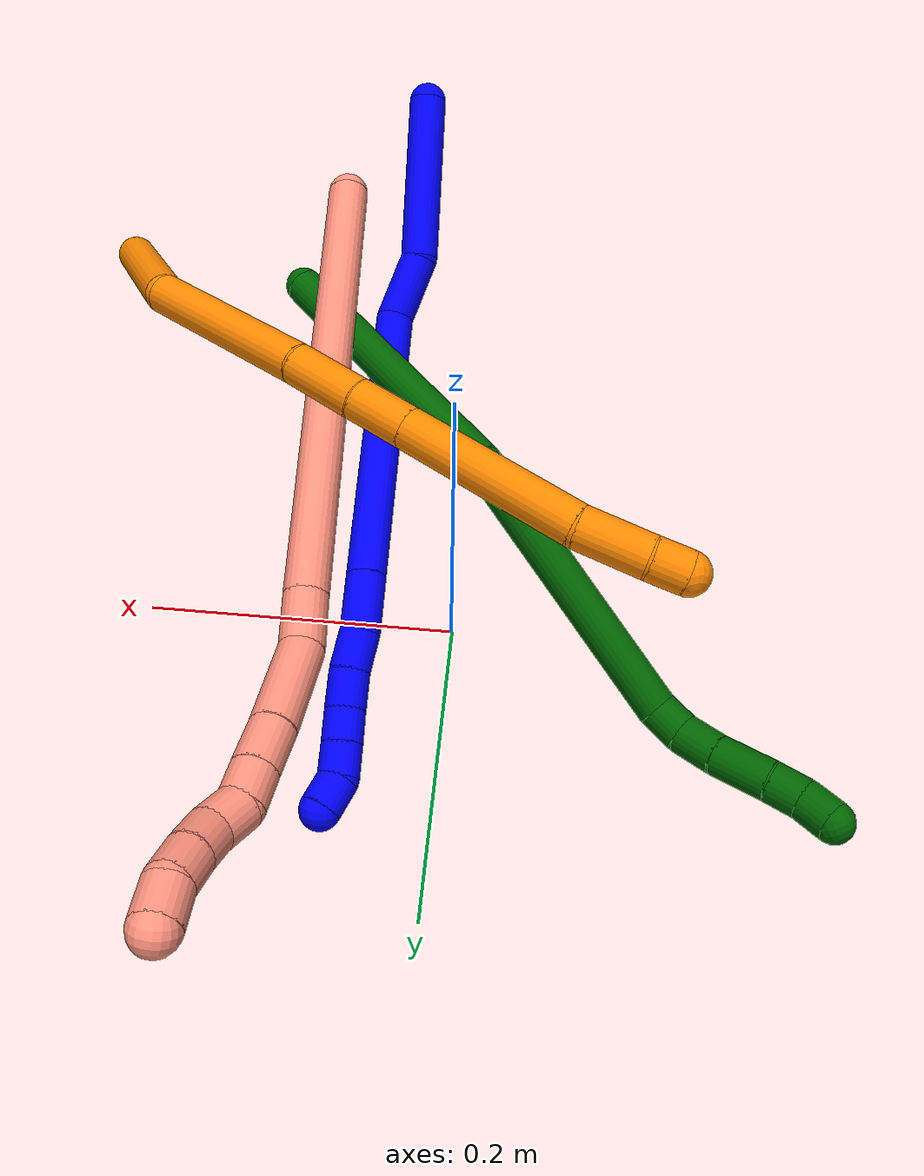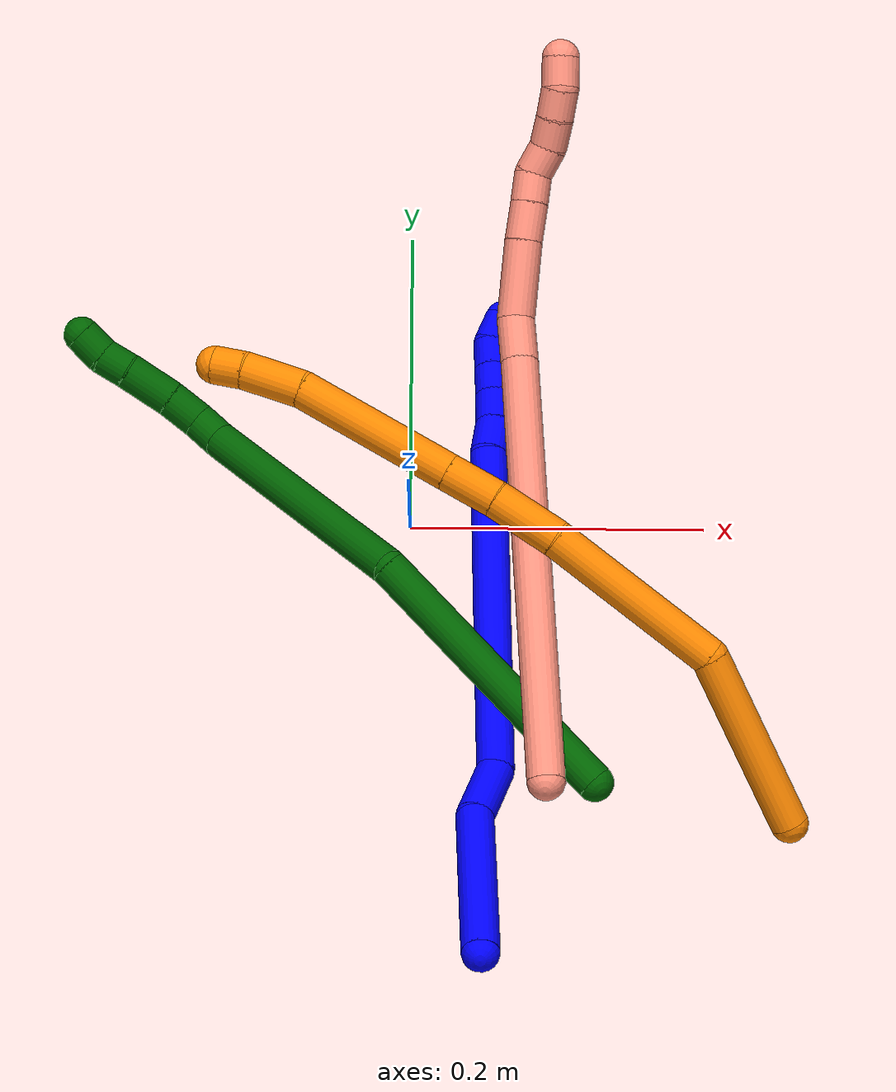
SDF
<sdf version="1.7">
 <world name="default">
  <model name="1">
   <static>0</static>
   <link name="1">
    <collision name="collision-cylinder-e_1_1_4">
     <pose>0.000733 0.022248 -0.053082 -2.74471 0.012741 -0.063341</pose>
     <geometry><cylinder><radius>0.0125</radius><length>0.115122</length></cylinder></geometry>
     <surface>
      <friction><ode><mu>1.16</mu><mu2>1.16</mu2><slip1>0</slip1><slip2>0</slip2></ode></friction>
      <contact><ode><kp>1e+06</kp><kd>1</kd><max_vel>0</max_vel><min_depth>0.001</min_depth></ode></contact>
     </surface>
    </collision>
    <visual name="visual-cylinder-e_1_1_4">
     <pose>0.000733 0.022248 -0.053082 -2.74471 0.012741 -0.063341</pose>
     <geometry><cylinder><radius>0.0125</radius><length>0.115122</length></cylinder></geometry>
     <material><ambient>0 0 1 1</ambient></material>
    </visual>
    <collision name="collision-cylinder-e_2_4_5">
     <pose>0.008862 0.050618 -0.126585 -2.85034 0.333932 -1.70936</pose>
     <geometry><cylinder><radius>0.0125</radius><length>0.045128</length></cylinder></geometry>
     <surface>
      <friction><ode><mu>1.16</mu><mu2>1.16</mu2><slip1>0</slip1><slip2>0</slip2></ode></friction>
      <contact><ode><kp>1e+06</kp><kd>1</kd><max_vel>0</max_vel><min_depth>0.001</min_depth></ode></contact>
     </surface>
    </collision>
    <visual name="visual-cylinder-e_2_4_5">
     <pose>0.008862 0.050618 -0.126585 -2.85034 0.333932 -1.70936</pose>
     <geometry><cylinder><radius>0.0125</radius><length>0.045128</length></cylinder></geometry>
     <material><ambient>0 0 1 1</ambient></material>
    </visual>
    <collision name="collision-cylinder-e_3_5_6">
     <pose>0.023188 0.122661 -0.218068 -2.39371 0.071377 -0.181475</pose>
     <geometry><cylinder><radius>0.0125</radius><length>0.194357</length></cylinder></geometry>
     <surface>
      <friction><ode><mu>1.16</mu><mu2>1.16</mu2><slip1>0</slip1><slip2>0</slip2></ode></friction>
      <contact><ode><kp>1e+06</kp><kd>1</kd><max_vel>0</max_vel><min_depth>0.001</min_depth></ode></contact>
     </surface>
    </collision>
    <visual name="visual-cylinder-e_3_5_6">
     <pose>0.023188 0.122661 -0.218068 -2.39371 0.071377 -0.181475</pose>
     <geometry><cylinder><radius>0.0125</radius><length>0.194357</length></cylinder></geometry>
     <material><ambient>0 0 1 1</ambient></material>
    </visual>
    <collision name="collision-cylinder-e_4_6_7">
     <pose>0.031397 0.200889 -0.302344 -2.39167 0.070679 -0.179171</pose>
     <geometry><cylinder><radius>0.0125</radius><length>0.036203</length></cylinder></geometry>
     <surface>
      <friction><ode><mu>1.16</mu><mu2>1.16</mu2><slip1>0</slip1><slip2>0</slip2></ode></friction>
      <contact><ode><kp>1e+06</kp><kd>1</kd><max_vel>0</max_vel><min_depth>0.001</min_depth></ode></contact>
     </surface>
    </collision>
    <visual name="visual-cylinder-e_4_6_7">
     <pose>0.031397 0.200889 -0.302344 -2.39167 0.070679 -0.179171</pose>
     <geometry><cylinder><radius>0.0125</radius><length>0.036203</length></cylinder></geometry>
     <material><ambient>0 0 1 1</ambient></material>
    </visual>
    <collision name="collision-cylinder-e_5_7_8">
     <pose>0.035304 0.219611 -0.32567 -2.57632 0.216023 -0.714698</pose>
     <geometry><cylinder><radius>0.0125</radius><length>0.024522</length></cylinder></geometry>
     <surface>
      <friction><ode><mu>1.16</mu><mu2>1.16</mu2><slip1>0</slip1><slip2>0</slip2></ode></friction>
      <contact><ode><kp>1e+06</kp><kd>1</kd><max_vel>0</max_vel><min_depth>0.001</min_depth></ode></contact>
     </surface>
    </collision>
    <visual name="visual-cylinder-e_5_7_8">
     <pose>0.035304 0.219611 -0.32567 -2.57632 0.216023 -0.714698</pose>
     <geometry><cylinder><radius>0.0125</radius><length>0.024522</length></cylinder></geometry>
     <material><ambient>0 0 1 1</ambient></material>
    </visual>
    <collision name="collision-cylinder-e_6_8_9">
     <pose>0.038777 0.232731 -0.345546 -2.5398 0.071239 -0.228666</pose>
     <geometry><cylinder><radius>0.0125</radius><length>0.023748</length></cylinder></geometry>
     <surface>
      <friction><ode><mu>1.16</mu><mu2>1.16</mu2><slip1>0</slip1><slip2>0</slip2></ode></friction>
      <contact><ode><kp>1e+06</kp><kd>1</kd><max_vel>0</max_vel><min_depth>0.001</min_depth></ode></contact>
     </surface>
    </collision>
    <visual name="visual-cylinder-e_6_8_9">
     <pose>0.038777 0.232731 -0.345546 -2.5398 0.071239 -0.228666</pose>
     <geometry><cylinder><radius>0.0125</radius><length>0.023748</length></cylinder></geometry>
     <material><ambient>0 0 1 1</ambient></material>
    </visual>
    <collision name="collision-cylinder-e_7_9_10">
     <pose>0.040196 0.246383 -0.362951 -2.40381 0.055487 -0.143319</pose>
     <geometry><cylinder><radius>0.0125</radius><length>0.020688</length></cylinder></geometry>
     <surface>
      <friction><ode><mu>1.16</mu><mu2>1.16</mu2><slip1>0</slip1><slip2>0</slip2></ode></friction>
      <contact><ode><kp>1e+06</kp><kd>1</kd><max_vel>0</max_vel><min_depth>0.001</min_depth></ode></contact>
     </surface>
    </collision>
    <visual name="visual-cylinder-e_7_9_10">
     <pose>0.040196 0.246383 -0.362951 -2.40381 0.055487 -0.143319</pose>
     <geometry><cylinder><radius>0.0125</radius><length>0.020688</length></cylinder></geometry>
     <material><ambient>0 0 1 1</ambient></material>
    </visual>
    <collision name="collision-cylinder-e_8_10_11">
     <pose>0.041402 0.260126 -0.378047 -2.40233 0.06267 -0.161456</pose>
     <geometry><cylinder><radius>0.0125</radius><length>0.020214</length></cylinder></geometry>
     <surface>
      <friction><ode><mu>1.16</mu><mu2>1.16</mu2><slip1>0</slip1><slip2>0</slip2></ode></friction>
      <contact><ode><kp>1e+06</kp><kd>1</kd><max_vel>0</max_vel><min_depth>0.001</min_depth></ode></contact>
     </surface>
    </collision>
    <visual name="visual-cylinder-e_8_10_11">
     <pose>0.041402 0.260126 -0.378047 -2.40233 0.06267 -0.161456</pose>
     <geometry><cylinder><radius>0.0125</radius><length>0.020214</length></cylinder></geometry>
     <material><ambient>0 0 1 1</ambient></material>
    </visual>
    <collision name="collision-cylinder-e_9_11_2">
     <pose>0.046845 0.273145 -0.391692 -2.35351 0.501247 -1.10379</pose>
     <geometry><cylinder><radius>0.0125</radius><length>0.020019</length></cylinder></geometry>
     <surface>
      <friction><ode><mu>1.16</mu><mu2>1.16</mu2><slip1>0</slip1><slip2>0</slip2></ode></friction>
      <contact><ode><kp>1e+06</kp><kd>1</kd><max_vel>0</max_vel><min_depth>0.001</min_depth></ode></contact>
     </surface>
    </collision>
    <visual name="visual-cylinder-e_9_11_2">
     <pose>0.046845 0.273145 -0.391692 -2.35351 0.501247 -1.10379</pose>
     <geometry><cylinder><radius>0.0125</radius><length>0.020019</length></cylinder></geometry>
     <material><ambient>0 0 1 1</ambient></material>
    </visual>
    <collision name="collision-sphere-2">
     <pose>0.051655 0.279369 -0.397882 0 -0 0</pose>
     <geometry><sphere><radius>0.0125</radius></sphere></geometry>
     <surface>
      <friction><ode><mu>1.16</mu><mu2>1.16</mu2><slip1>0</slip1><slip2>0</slip2></ode></friction>
      <contact><ode><kp>1e+06</kp><kd>1</kd><max_vel>0</max_vel><min_depth>0.001</min_depth></ode></contact>
     </surface>
    </collision>
    <visual name="visual-sphere-2">
     <pose>0.051655 0.279369 -0.397882 0 -0 0</pose>
     <geometry><sphere><radius>0.0125</radius></sphere></geometry>
     <material><ambient>0 0 1 1</ambient></material>
    </visual>
    <collision name="collision-sphere-11">
     <pose>0.042035 0.266922 -0.385501 0 -0 0</pose>
     <geometry><sphere><radius>0.0125</radius></sphere></geometry>
     <surface>
      <friction><ode><mu>1.16</mu><mu2>1.16</mu2><slip1>0</slip1><slip2>0</slip2></ode></friction>
      <contact><ode><kp>1e+06</kp><kd>1</kd><max_vel>0</max_vel><min_depth>0.001</min_depth></ode></contact>
     </surface>
    </collision>
    <visual name="visual-sphere-11">
     <pose>0.042035 0.266922 -0.385501 0 -0 0</pose>
     <geometry><sphere><radius>0.0125</radius></sphere></geometry>
     <material><ambient>0 0 1 1</ambient></material>
    </visual>
    <collision name="collision-sphere-10">
     <pose>0.040769 0.25333 -0.370593 0 -0 0</pose>
     <geometry><sphere><radius>0.0125</radius></sphere></geometry>
     <surface>
      <friction><ode><mu>1.16</mu><mu2>1.16</mu2><slip1>0</slip1><slip2>0</slip2></ode></friction>
      <contact><ode><kp>1e+06</kp><kd>1</kd><max_vel>0</max_vel><min_depth>0.001</min_depth></ode></contact>
     </surface>
    </collision>
    <visual name="visual-sphere-10">
     <pose>0.040769 0.25333 -0.370593 0 -0 0</pose>
     <geometry><sphere><radius>0.0125</radius></sphere></geometry>
     <material><ambient>0 0 1 1</ambient></material>
    </visual>
    <collision name="collision-sphere-9">
     <pose>0.039622 0.239436 -0.355309 0 -0 0</pose>
     <geometry><sphere><radius>0.0125</radius></sphere></geometry>
     <surface>
      <friction><ode><mu>1.16</mu><mu2>1.16</mu2><slip1>0</slip1><slip2>0</slip2></ode></friction>
      <contact><ode><kp>1e+06</kp><kd>1</kd><max_vel>0</max_vel><min_depth>0.001</min_depth></ode></contact>
     </surface>
    </collision>
    <visual name="visual-sphere-9">
     <pose>0.039622 0.239436 -0.355309 0 -0 0</pose>
     <geometry><sphere><radius>0.0125</radius></sphere></geometry>
     <material><ambient>0 0 1 1</ambient></material>
    </visual>
    <collision name="collision-sphere-4">
     <pose>0.001467 0.044497 -0.106165 0 -0 0</pose>
     <geometry><sphere><radius>0.0125</radius></sphere></geometry>
     <surface>
      <friction><ode><mu>1.16</mu><mu2>1.16</mu2><slip1>0</slip1><slip2>0</slip2></ode></friction>
      <contact><ode><kp>1e+06</kp><kd>1</kd><max_vel>0</max_vel><min_depth>0.001</min_depth></ode></contact>
     </surface>
    </collision>
    <visual name="visual-sphere-4">
     <pose>0.001467 0.044497 -0.106165 0 -0 0</pose>
     <geometry><sphere><radius>0.0125</radius></sphere></geometry>
     <material><ambient>0 0 1 1</ambient></material>
    </visual>
    <collision name="collision-sphere-1">
     <geometry><sphere><radius>0.0125</radius></sphere></geometry>
     <surface>
      <friction><ode><mu>1.16</mu><mu2>1.16</mu2><slip1>0</slip1><slip2>0</slip2></ode></friction>
      <contact><ode><kp>1e+06</kp><kd>1</kd><max_vel>0</max_vel><min_depth>0.001</min_depth></ode></contact>
     </surface>
    </collision>
    <visual name="visual-sphere-1">
     <geometry><sphere><radius>0.0125</radius></sphere></geometry>
     <material><ambient>0 0 1 1</ambient></material>
    </visual>
    <collision name="collision-sphere-8">
     <pose>0.037932 0.226026 -0.335783 0 -0 0</pose>
     <geometry><sphere><radius>0.0125</radius></sphere></geometry>
     <surface>
      <friction><ode><mu>1.16</mu><mu2>1.16</mu2><slip1>0</slip1><slip2>0</slip2></ode></friction>
      <contact><ode><kp>1e+06</kp><kd>1</kd><max_vel>0</max_vel><min_depth>0.001</min_depth></ode></contact>
     </surface>
    </collision>
    <visual name="visual-sphere-8">
     <pose>0.037932 0.226026 -0.335783 0 -0 0</pose>
     <geometry><sphere><radius>0.0125</radius></sphere></geometry>
     <material><ambient>0 0 1 1</ambient></material>
    </visual>
    <collision name="collision-sphere-5">
     <pose>0.016258 0.056739 -0.147005 0 -0 0</pose>
     <geometry><sphere><radius>0.0125</radius></sphere></geometry>
     <surface>
      <friction><ode><mu>1.16</mu><mu2>1.16</mu2><slip1>0</slip1><slip2>0</slip2></ode></friction>
      <contact><ode><kp>1e+06</kp><kd>1</kd><max_vel>0</max_vel><min_depth>0.001</min_depth></ode></contact>
     </surface>
    </collision>
    <visual name="visual-sphere-5">
     <pose>0.016258 0.056739 -0.147005 0 -0 0</pose>
     <geometry><sphere><radius>0.0125</radius></sphere></geometry>
     <material><ambient>0 0 1 1</ambient></material>
    </visual>
    <collision name="collision-sphere-6">
     <pose>0.030119 0.188582 -0.289132 0 -0 0</pose>
     <geometry><sphere><radius>0.0125</radius></sphere></geometry>
     <surface>
      <friction><ode><mu>1.16</mu><mu2>1.16</mu2><slip1>0</slip1><slip2>0</slip2></ode></friction>
      <contact><ode><kp>1e+06</kp><kd>1</kd><max_vel>0</max_vel><min_depth>0.001</min_depth></ode></contact>
     </surface>
    </collision>
    <visual name="visual-sphere-6">
     <pose>0.030119 0.188582 -0.289132 0 -0 0</pose>
     <geometry><sphere><radius>0.0125</radius></sphere></geometry>
     <material><ambient>0 0 1 1</ambient></material>
    </visual>
    <collision name="collision-sphere-7">
     <pose>0.032675 0.213196 -0.315557 0 -0 0</pose>
     <geometry><sphere><radius>0.0125</radius></sphere></geometry>
     <surface>
      <friction><ode><mu>1.16</mu><mu2>1.16</mu2><slip1>0</slip1><slip2>0</slip2></ode></friction>
      <contact><ode><kp>1e+06</kp><kd>1</kd><max_vel>0</max_vel><min_depth>0.001</min_depth></ode></contact>
     </surface>
    </collision>
    <visual name="visual-sphere-7">
     <pose>0.032675 0.213196 -0.315557 0 -0 0</pose>
     <geometry><sphere><radius>0.0125</radius></sphere></geometry>
     <material><ambient>0 0 1 1</ambient></material>
    </visual>
    <inertial>
     <pose>0.021041 0.125387 -0.208672 0 -0 0</pose>
     <mass>0.5</mass>
     <inertia>
      <ixx>0.000621</ixx>
      <ixy>0</ixy>
      <ixz>0</ixz>
      <iyy>-0.00068</iyy>
      <iyz>0</iyz>
      <izz>-0.000564</izz>
     </inertia>
    </inertial>
   </link>
   <pose>0.046915 -0.300897 0.215191 0.513061 -0.094899 0.125913</pose>
  </model>
  <model name="6">
   <static>0</static>
   <link name="6">
    <collision name="collision-cylinder-e_1_1_4">
     <pose>-0.028671 0.049148 -0.080304 -2.59238 -0.295598 0.972333</pose>
     <geometry><cylinder><radius>0.0125</radius><length>0.196839</length></cylinder></geometry>
     <surface>
      <friction><ode><mu>1.16</mu><mu2>1.16</mu2><slip1>0</slip1><slip2>0</slip2></ode></friction>
      <contact><ode><kp>1e+06</kp><kd>1</kd><max_vel>0</max_vel><min_depth>0.001</min_depth></ode></contact>
     </surface>
    </collision>
    <visual name="visual-cylinder-e_1_1_4">
     <pose>-0.028671 0.049148 -0.080304 -2.59238 -0.295598 0.972333</pose>
     <geometry><cylinder><radius>0.0125</radius><length>0.196839</length></cylinder></geometry>
     <material><ambient>0 0.392157 0.003922 1</ambient></material>
    </visual>
    <collision name="collision-cylinder-e_2_4_5">
     <pose>-0.078399 0.103104 -0.24965 -3.08766 -0.231897 2.68643</pose>
     <geometry><cylinder><radius>0.0125</radius><length>0.183247</length></cylinder></geometry>
     <surface>
      <friction><ode><mu>1.16</mu><mu2>1.16</mu2><slip1>0</slip1><slip2>0</slip2></ode></friction>
      <contact><ode><kp>1e+06</kp><kd>1</kd><max_vel>0</max_vel><min_depth>0.001</min_depth></ode></contact>
     </surface>
    </collision>
    <visual name="visual-cylinder-e_2_4_5">
     <pose>-0.078399 0.103104 -0.24965 -3.08766 -0.231897 2.68643</pose>
     <geometry><cylinder><radius>0.0125</radius><length>0.183247</length></cylinder></geometry>
     <material><ambient>0 0.392157 0.003922 1</ambient></material>
    </visual>
    <collision name="collision-cylinder-e_3_5_6">
     <pose>-0.103047 0.112392 -0.347445 -2.66845 -0.350095 1.26582</pose>
     <geometry><cylinder><radius>0.0125</radius><length>0.020938</length></cylinder></geometry>
     <surface>
      <friction><ode><mu>1.16</mu><mu2>1.16</mu2><slip1>0</slip1><slip2>0</slip2></ode></friction>
      <contact><ode><kp>1e+06</kp><kd>1</kd><max_vel>0</max_vel><min_depth>0.001</min_depth></ode></contact>
     </surface>
    </collision>
    <visual name="visual-cylinder-e_3_5_6">
     <pose>-0.103047 0.112392 -0.347445 -2.66845 -0.350095 1.26582</pose>
     <geometry><cylinder><radius>0.0125</radius><length>0.020938</length></cylinder></geometry>
     <material><ambient>0 0.392157 0.003922 1</ambient></material>
    </visual>
    <collision name="collision-cylinder-e_4_6_7">
     <pose>-0.112453 0.124017 -0.364209 -2.41331 -0.496574 1.17392</pose>
     <geometry><cylinder><radius>0.0125</radius><length>0.024413</length></cylinder></geometry>
     <surface>
      <friction><ode><mu>1.16</mu><mu2>1.16</mu2><slip1>0</slip1><slip2>0</slip2></ode></friction>
      <contact><ode><kp>1e+06</kp><kd>1</kd><max_vel>0</max_vel><min_depth>0.001</min_depth></ode></contact>
     </surface>
    </collision>
    <visual name="visual-cylinder-e_4_6_7">
     <pose>-0.112453 0.124017 -0.364209 -2.41331 -0.496574 1.17392</pose>
     <geometry><cylinder><radius>0.0125</radius><length>0.024413</length></cylinder></geometry>
     <material><ambient>0 0.392157 0.003922 1</ambient></material>
    </visual>
    <collision name="collision-cylinder-e_5_7_8">
     <pose>-0.127846 0.140865 -0.382559 -2.38789 -0.593976 1.31647</pose>
     <geometry><cylinder><radius>0.0125</radius><length>0.034225</length></cylinder></geometry>
     <surface>
      <friction><ode><mu>1.16</mu><mu2>1.16</mu2><slip1>0</slip1><slip2>0</slip2></ode></friction>
      <contact><ode><kp>1e+06</kp><kd>1</kd><max_vel>0</max_vel><min_depth>0.001</min_depth></ode></contact>
     </surface>
    </collision>
    <visual name="visual-cylinder-e_5_7_8">
     <pose>-0.127846 0.140865 -0.382559 -2.38789 -0.593976 1.31647</pose>
     <geometry><cylinder><radius>0.0125</radius><length>0.034225</length></cylinder></geometry>
     <material><ambient>0 0.392157 0.003922 1</ambient></material>
    </visual>
    <collision name="collision-cylinder-e_6_8_9">
     <pose>-0.1431 0.155344 -0.399633 -2.5249 -0.60249 1.54599</pose>
     <geometry><cylinder><radius>0.0125</radius><length>0.020036</length></cylinder></geometry>
     <surface>
      <friction><ode><mu>1.16</mu><mu2>1.16</mu2><slip1>0</slip1><slip2>0</slip2></ode></friction>
      <contact><ode><kp>1e+06</kp><kd>1</kd><max_vel>0</max_vel><min_depth>0.001</min_depth></ode></contact>
     </surface>
    </collision>
    <visual name="visual-cylinder-e_6_8_9">
     <pose>-0.1431 0.155344 -0.399633 -2.5249 -0.60249 1.54599</pose>
     <geometry><cylinder><radius>0.0125</radius><length>0.020036</length></cylinder></geometry>
     <material><ambient>0 0.392157 0.003922 1</ambient></material>
    </visual>
    <collision name="collision-cylinder-e_7_9_2">
     <pose>-0.152488 0.166554 -0.413283 -2.3921 -0.37429 0.897359</pose>
     <geometry><cylinder><radius>0.0125</radius><length>0.020302</length></cylinder></geometry>
     <surface>
      <friction><ode><mu>1.16</mu><mu2>1.16</mu2><slip1>0</slip1><slip2>0</slip2></ode></friction>
      <contact><ode><kp>1e+06</kp><kd>1</kd><max_vel>0</max_vel><min_depth>0.001</min_depth></ode></contact>
     </surface>
    </collision>
    <visual name="visual-cylinder-e_7_9_2">
     <pose>-0.152488 0.166554 -0.413283 -2.3921 -0.37429 0.897359</pose>
     <geometry><cylinder><radius>0.0125</radius><length>0.020302</length></cylinder></geometry>
     <material><ambient>0 0.392157 0.003922 1</ambient></material>
    </visual>
    <collision name="collision-sphere-2">
     <pose>-0.1562 0.172991 -0.420199 0 -0 0</pose>
     <geometry><sphere><radius>0.0125</radius></sphere></geometry>
     <surface>
      <friction><ode><mu>1.16</mu><mu2>1.16</mu2><slip1>0</slip1><slip2>0</slip2></ode></friction>
      <contact><ode><kp>1e+06</kp><kd>1</kd><max_vel>0</max_vel><min_depth>0.001</min_depth></ode></contact>
     </surface>
    </collision>
    <visual name="visual-sphere-2">
     <pose>-0.1562 0.172991 -0.420199 0 -0 0</pose>
     <geometry><sphere><radius>0.0125</radius></sphere></geometry>
     <material><ambient>0 0.392157 0.003922 1</ambient></material>
    </visual>
    <collision name="collision-sphere-9">
     <pose>-0.148777 0.160118 -0.406366 0 -0 0</pose>
     <geometry><sphere><radius>0.0125</radius></sphere></geometry>
     <surface>
      <friction><ode><mu>1.16</mu><mu2>1.16</mu2><slip1>0</slip1><slip2>0</slip2></ode></friction>
      <contact><ode><kp>1e+06</kp><kd>1</kd><max_vel>0</max_vel><min_depth>0.001</min_depth></ode></contact>
     </surface>
    </collision>
    <visual name="visual-sphere-9">
     <pose>-0.148777 0.160118 -0.406366 0 -0 0</pose>
     <geometry><sphere><radius>0.0125</radius></sphere></geometry>
     <material><ambient>0 0.392157 0.003922 1</ambient></material>
    </visual>
    <collision name="collision-sphere-4">
     <pose>-0.057342 0.098297 -0.160609 0 -0 0</pose>
     <geometry><sphere><radius>0.0125</radius></sphere></geometry>
     <surface>
      <friction><ode><mu>1.16</mu><mu2>1.16</mu2><slip1>0</slip1><slip2>0</slip2></ode></friction>
      <contact><ode><kp>1e+06</kp><kd>1</kd><max_vel>0</max_vel><min_depth>0.001</min_depth></ode></contact>
     </surface>
    </collision>
    <visual name="visual-sphere-4">
     <pose>-0.057342 0.098297 -0.160609 0 -0 0</pose>
     <geometry><sphere><radius>0.0125</radius></sphere></geometry>
     <material><ambient>0 0.392157 0.003922 1</ambient></material>
    </visual>
    <collision name="collision-sphere-1">
     <geometry><sphere><radius>0.0125</radius></sphere></geometry>
     <surface>
      <friction><ode><mu>1.16</mu><mu2>1.16</mu2><slip1>0</slip1><slip2>0</slip2></ode></friction>
      <contact><ode><kp>1e+06</kp><kd>1</kd><max_vel>0</max_vel><min_depth>0.001</min_depth></ode></contact>
     </surface>
    </collision>
    <visual name="visual-sphere-1">
     <geometry><sphere><radius>0.0125</radius></sphere></geometry>
     <material><ambient>0 0.392157 0.003922 1</ambient></material>
    </visual>
    <collision name="collision-sphere-8">
     <pose>-0.137423 0.15057 -0.392899 0 -0 0</pose>
     <geometry><sphere><radius>0.0125</radius></sphere></geometry>
     <surface>
      <friction><ode><mu>1.16</mu><mu2>1.16</mu2><slip1>0</slip1><slip2>0</slip2></ode></friction>
      <contact><ode><kp>1e+06</kp><kd>1</kd><max_vel>0</max_vel><min_depth>0.001</min_depth></ode></contact>
     </surface>
    </collision>
    <visual name="visual-sphere-8">
     <pose>-0.137423 0.15057 -0.392899 0 -0 0</pose>
     <geometry><sphere><radius>0.0125</radius></sphere></geometry>
     <material><ambient>0 0.392157 0.003922 1</ambient></material>
    </visual>
    <collision name="collision-sphere-5">
     <pose>-0.099456 0.107911 -0.338691 0 -0 0</pose>
     <geometry><sphere><radius>0.0125</radius></sphere></geometry>
     <surface>
      <friction><ode><mu>1.16</mu><mu2>1.16</mu2><slip1>0</slip1><slip2>0</slip2></ode></friction>
      <contact><ode><kp>1e+06</kp><kd>1</kd><max_vel>0</max_vel><min_depth>0.001</min_depth></ode></contact>
     </surface>
    </collision>
    <visual name="visual-sphere-5">
     <pose>-0.099456 0.107911 -0.338691 0 -0 0</pose>
     <geometry><sphere><radius>0.0125</radius></sphere></geometry>
     <material><ambient>0 0.392157 0.003922 1</ambient></material>
    </visual>
    <collision name="collision-sphere-6">
     <pose>-0.106638 0.116874 -0.356199 0 -0 0</pose>
     <geometry><sphere><radius>0.0125</radius></sphere></geometry>
     <surface>
      <friction><ode><mu>1.16</mu><mu2>1.16</mu2><slip1>0</slip1><slip2>0</slip2></ode></friction>
      <contact><ode><kp>1e+06</kp><kd>1</kd><max_vel>0</max_vel><min_depth>0.001</min_depth></ode></contact>
     </surface>
    </collision>
    <visual name="visual-sphere-6">
     <pose>-0.106638 0.116874 -0.356199 0 -0 0</pose>
     <geometry><sphere><radius>0.0125</radius></sphere></geometry>
     <material><ambient>0 0.392157 0.003922 1</ambient></material>
    </visual>
    <collision name="collision-sphere-7">
     <pose>-0.118268 0.13116 -0.372218 0 -0 0</pose>
     <geometry><sphere><radius>0.0125</radius></sphere></geometry>
     <surface>
      <friction><ode><mu>1.16</mu><mu2>1.16</mu2><slip1>0</slip1><slip2>0</slip2></ode></friction>
      <contact><ode><kp>1e+06</kp><kd>1</kd><max_vel>0</max_vel><min_depth>0.001</min_depth></ode></contact>
     </surface>
    </collision>
    <visual name="visual-sphere-7">
     <pose>-0.118268 0.13116 -0.372218 0 -0 0</pose>
     <geometry><sphere><radius>0.0125</radius></sphere></geometry>
     <material><ambient>0 0.392157 0.003922 1</ambient></material>
    </visual>
    <inertial>
     <pose>-0.070503 0.090527 -0.214423 0 -0 0</pose>
     <mass>0.5</mass>
     <inertia>
      <ixx>0.000623</ixx>
      <ixy>0</ixy>
      <ixz>0</ixz>
      <iyy>0.000995</iyy>
      <iyz>0</iyz>
      <izz>-7.5e-05</izz>
     </inertia>
    </inertial>
   </link>
   <pose>0.121042 -0.186263 0.133312 0.852458 0.203747 0.432045</pose>
  </model>
  <model name="16">
   <static>0</static>
   <link name="16">
    <collision name="collision-cylinder-e_1_1_4">
     <pose>0.000885 0.085486 -0.117563 -2.51288 0.006091 -0.018731</pose>
     <geometry><cylinder><radius>0.0125</radius><length>0.290721</length></cylinder></geometry>
     <surface>
      <friction><ode><mu>1.16</mu><mu2>1.16</mu2><slip1>0</slip1><slip2>0</slip2></ode></friction>
      <contact><ode><kp>1e+06</kp><kd>1</kd><max_vel>0</max_vel><min_depth>0.001</min_depth></ode></contact>
     </surface>
    </collision>
    <visual name="visual-cylinder-e_1_1_4">
     <pose>0.000885 0.085486 -0.117563 -2.51288 0.006091 -0.018731</pose>
     <geometry><cylinder><radius>0.0125</radius><length>0.290721</length></cylinder></geometry>
     <material><ambient>1 0.576471 0.494118 1</ambient></material>
    </visual>
    <collision name="collision-cylinder-e_2_4_5">
     <pose>0.001553 0.180443 -0.247356 -2.48265 -0.014091 0.041204</pose>
     <geometry><cylinder><radius>0.0125</radius><length>0.03094</length></cylinder></geometry>
     <surface>
      <friction><ode><mu>1.16</mu><mu2>1.16</mu2><slip1>0</slip1><slip2>0</slip2></ode></friction>
      <contact><ode><kp>1e+06</kp><kd>1</kd><max_vel>0</max_vel><min_depth>0.001</min_depth></ode></contact>
     </surface>
    </collision>
    <visual name="visual-cylinder-e_2_4_5">
     <pose>0.001553 0.180443 -0.247356 -2.48265 -0.014091 0.041204</pose>
     <geometry><cylinder><radius>0.0125</radius><length>0.03094</length></cylinder></geometry>
     <material><ambient>1 0.576471 0.494118 1</ambient></material>
    </visual>
    <collision name="collision-cylinder-e_3_5_6">
     <pose>0.006857 0.21011 -0.275176 -2.2282 0.213148 -0.428769</pose>
     <geometry><cylinder><radius>0.0125</radius><length>0.05221</length></cylinder></geometry>
     <surface>
      <friction><ode><mu>1.16</mu><mu2>1.16</mu2><slip1>0</slip1><slip2>0</slip2></ode></friction>
      <contact><ode><kp>1e+06</kp><kd>1</kd><max_vel>0</max_vel><min_depth>0.001</min_depth></ode></contact>
     </surface>
    </collision>
    <visual name="visual-cylinder-e_3_5_6">
     <pose>0.006857 0.21011 -0.275176 -2.2282 0.213148 -0.428769</pose>
     <geometry><cylinder><radius>0.0125</radius><length>0.05221</length></cylinder></geometry>
     <material><ambient>1 0.576471 0.494118 1</ambient></material>
    </visual>
    <collision name="collision-cylinder-e_4_6_7">
     <pose>0.015734 0.239948 -0.298503 -2.24698 0.265001 -0.541974</pose>
     <geometry><cylinder><radius>0.0125</radius><length>0.025617</length></cylinder></geometry>
     <surface>
      <friction><ode><mu>1.16</mu><mu2>1.16</mu2><slip1>0</slip1><slip2>0</slip2></ode></friction>
      <contact><ode><kp>1e+06</kp><kd>1</kd><max_vel>0</max_vel><min_depth>0.001</min_depth></ode></contact>
     </surface>
    </collision>
    <visual name="visual-cylinder-e_4_6_7">
     <pose>0.015734 0.239948 -0.298503 -2.24698 0.265001 -0.541974</pose>
     <geometry><cylinder><radius>0.0125</radius><length>0.025617</length></cylinder></geometry>
     <material><ambient>1 0.576471 0.494118 1</ambient></material>
    </visual>
    <collision name="collision-cylinder-e_5_7_8">
     <pose>0.021501 0.25712 -0.312389 -2.25567 0.243214 -0.504251</pose>
     <geometry><cylinder><radius>0.0125</radius><length>0.020034</length></cylinder></geometry>
     <surface>
      <friction><ode><mu>1.16</mu><mu2>1.16</mu2><slip1>0</slip1><slip2>0</slip2></ode></friction>
      <contact><ode><kp>1e+06</kp><kd>1</kd><max_vel>0</max_vel><min_depth>0.001</min_depth></ode></contact>
     </surface>
    </collision>
    <visual name="visual-cylinder-e_5_7_8">
     <pose>0.021501 0.25712 -0.312389 -2.25567 0.243214 -0.504251</pose>
     <geometry><cylinder><radius>0.0125</radius><length>0.020034</length></cylinder></geometry>
     <material><ambient>1 0.576471 0.494118 1</ambient></material>
    </visual>
    <collision name="collision-cylinder-e_6_8_9">
     <pose>0.030084 0.27181 -0.322231 -2.04685 0.653692 -1.01519</pose>
     <geometry><cylinder><radius>0.0125</radius><length>0.020296</length></cylinder></geometry>
     <surface>
      <friction><ode><mu>1.16</mu><mu2>1.16</mu2><slip1>0</slip1><slip2>0</slip2></ode></friction>
      <contact><ode><kp>1e+06</kp><kd>1</kd><max_vel>0</max_vel><min_depth>0.001</min_depth></ode></contact>
     </surface>
    </collision>
    <visual name="visual-cylinder-e_6_8_9">
     <pose>0.030084 0.27181 -0.322231 -2.04685 0.653692 -1.01519</pose>
     <geometry><cylinder><radius>0.0125</radius><length>0.020296</length></cylinder></geometry>
     <material><ambient>1 0.576471 0.494118 1</ambient></material>
    </visual>
    <collision name="collision-cylinder-e_7_9_10">
     <pose>0.040068 0.287961 -0.328242 -1.82324 0.38961 -0.49872</pose>
     <geometry><cylinder><radius>0.0125</radius><length>0.020076</length></cylinder></geometry>
     <surface>
      <friction><ode><mu>1.16</mu><mu2>1.16</mu2><slip1>0</slip1><slip2>0</slip2></ode></friction>
      <contact><ode><kp>1e+06</kp><kd>1</kd><max_vel>0</max_vel><min_depth>0.001</min_depth></ode></contact>
     </surface>
    </collision>
    <visual name="visual-cylinder-e_7_9_10">
     <pose>0.040068 0.287961 -0.328242 -1.82324 0.38961 -0.49872</pose>
     <geometry><cylinder><radius>0.0125</radius><length>0.020076</length></cylinder></geometry>
     <material><ambient>1 0.576471 0.494118 1</ambient></material>
    </visual>
    <collision name="collision-cylinder-e_8_10_11">
     <pose>0.047233 0.305913 -0.333572 -1.89495 0.340745 -0.469764</pose>
     <geometry><cylinder><radius>0.0125</radius><length>0.020059</length></cylinder></geometry>
     <surface>
      <friction><ode><mu>1.16</mu><mu2>1.16</mu2><slip1>0</slip1><slip2>0</slip2></ode></friction>
      <contact><ode><kp>1e+06</kp><kd>1</kd><max_vel>0</max_vel><min_depth>0.001</min_depth></ode></contact>
     </surface>
    </collision>
    <visual name="visual-cylinder-e_8_10_11">
     <pose>0.047233 0.305913 -0.333572 -1.89495 0.340745 -0.469764</pose>
     <geometry><cylinder><radius>0.0125</radius><length>0.020059</length></cylinder></geometry>
     <material><ambient>1 0.576471 0.494118 1</ambient></material>
    </visual>
    <collision name="collision-cylinder-e_9_11_2">
     <pose>0.051985 0.32295 -0.342352 -2.19107 0.140194 -0.271204</pose>
     <geometry><cylinder><radius>0.0125</radius><length>0.020048</length></cylinder></geometry>
     <surface>
      <friction><ode><mu>1.16</mu><mu2>1.16</mu2><slip1>0</slip1><slip2>0</slip2></ode></friction>
      <contact><ode><kp>1e+06</kp><kd>1</kd><max_vel>0</max_vel><min_depth>0.001</min_depth></ode></contact>
     </surface>
    </collision>
    <visual name="visual-cylinder-e_9_11_2">
     <pose>0.051985 0.32295 -0.342352 -2.19107 0.140194 -0.271204</pose>
     <geometry><cylinder><radius>0.0125</radius><length>0.020048</length></cylinder></geometry>
     <material><ambient>1 0.576471 0.494118 1</ambient></material>
    </visual>
    <collision name="collision-sphere-2">
     <pose>0.053386 0.331027 -0.348122 0 -0 0</pose>
     <geometry><sphere><radius>0.0125</radius></sphere></geometry>
     <surface>
      <friction><ode><mu>1.16</mu><mu2>1.16</mu2><slip1>0</slip1><slip2>0</slip2></ode></friction>
      <contact><ode><kp>1e+06</kp><kd>1</kd><max_vel>0</max_vel><min_depth>0.001</min_depth></ode></contact>
     </surface>
    </collision>
    <visual name="visual-sphere-2">
     <pose>0.053386 0.331027 -0.348122 0 -0 0</pose>
     <geometry><sphere><radius>0.0125</radius></sphere></geometry>
     <material><ambient>1 0.576471 0.494118 1</ambient></material>
    </visual>
    <collision name="collision-sphere-11">
     <pose>0.050584 0.314874 -0.336583 0 -0 0</pose>
     <geometry><sphere><radius>0.0125</radius></sphere></geometry>
     <surface>
      <friction><ode><mu>1.16</mu><mu2>1.16</mu2><slip1>0</slip1><slip2>0</slip2></ode></friction>
      <contact><ode><kp>1e+06</kp><kd>1</kd><max_vel>0</max_vel><min_depth>0.001</min_depth></ode></contact>
     </surface>
    </collision>
    <visual name="visual-sphere-11">
     <pose>0.050584 0.314874 -0.336583 0 -0 0</pose>
     <geometry><sphere><radius>0.0125</radius></sphere></geometry>
     <material><ambient>1 0.576471 0.494118 1</ambient></material>
    </visual>
    <collision name="collision-sphere-10">
     <pose>0.043881 0.296953 -0.330561 0 -0 0</pose>
     <geometry><sphere><radius>0.0125</radius></sphere></geometry>
     <surface>
      <friction><ode><mu>1.16</mu><mu2>1.16</mu2><slip1>0</slip1><slip2>0</slip2></ode></friction>
      <contact><ode><kp>1e+06</kp><kd>1</kd><max_vel>0</max_vel><min_depth>0.001</min_depth></ode></contact>
     </surface>
    </collision>
    <visual name="visual-sphere-10">
     <pose>0.043881 0.296953 -0.330561 0 -0 0</pose>
     <geometry><sphere><radius>0.0125</radius></sphere></geometry>
     <material><ambient>1 0.576471 0.494118 1</ambient></material>
    </visual>
    <collision name="collision-sphere-9">
     <pose>0.036255 0.27897 -0.325923 0 -0 0</pose>
     <geometry><sphere><radius>0.0125</radius></sphere></geometry>
     <surface>
      <friction><ode><mu>1.16</mu><mu2>1.16</mu2><slip1>0</slip1><slip2>0</slip2></ode></friction>
      <contact><ode><kp>1e+06</kp><kd>1</kd><max_vel>0</max_vel><min_depth>0.001</min_depth></ode></contact>
     </surface>
    </collision>
    <visual name="visual-sphere-9">
     <pose>0.036255 0.27897 -0.325923 0 -0 0</pose>
     <geometry><sphere><radius>0.0125</radius></sphere></geometry>
     <material><ambient>1 0.576471 0.494118 1</ambient></material>
    </visual>
    <collision name="collision-sphere-4">
     <pose>0.001771 0.170972 -0.235126 0 -0 0</pose>
     <geometry><sphere><radius>0.0125</radius></sphere></geometry>
     <surface>
      <friction><ode><mu>1.16</mu><mu2>1.16</mu2><slip1>0</slip1><slip2>0</slip2></ode></friction>
      <contact><ode><kp>1e+06</kp><kd>1</kd><max_vel>0</max_vel><min_depth>0.001</min_depth></ode></contact>
     </surface>
    </collision>
    <visual name="visual-sphere-4">
     <pose>0.001771 0.170972 -0.235126 0 -0 0</pose>
     <geometry><sphere><radius>0.0125</radius></sphere></geometry>
     <material><ambient>1 0.576471 0.494118 1</ambient></material>
    </visual>
    <collision name="collision-sphere-1">
     <geometry><sphere><radius>0.0125</radius></sphere></geometry>
     <surface>
      <friction><ode><mu>1.16</mu><mu2>1.16</mu2><slip1>0</slip1><slip2>0</slip2></ode></friction>
      <contact><ode><kp>1e+06</kp><kd>1</kd><max_vel>0</max_vel><min_depth>0.001</min_depth></ode></contact>
     </surface>
    </collision>
    <visual name="visual-sphere-1">
     <geometry><sphere><radius>0.0125</radius></sphere></geometry>
     <material><ambient>1 0.576471 0.494118 1</ambient></material>
    </visual>
    <collision name="collision-sphere-8">
     <pose>0.023913 0.264649 -0.318539 0 -0 0</pose>
     <geometry><sphere><radius>0.0125</radius></sphere></geometry>
     <surface>
      <friction><ode><mu>1.16</mu><mu2>1.16</mu2><slip1>0</slip1><slip2>0</slip2></ode></friction>
      <contact><ode><kp>1e+06</kp><kd>1</kd><max_vel>0</max_vel><min_depth>0.001</min_depth></ode></contact>
     </surface>
    </collision>
    <visual name="visual-sphere-8">
     <pose>0.023913 0.264649 -0.318539 0 -0 0</pose>
     <geometry><sphere><radius>0.0125</radius></sphere></geometry>
     <material><ambient>1 0.576471 0.494118 1</ambient></material>
    </visual>
    <collision name="collision-sphere-5">
     <pose>0.001335 0.189914 -0.259586 0 -0 0</pose>
     <geometry><sphere><radius>0.0125</radius></sphere></geometry>
     <surface>
      <friction><ode><mu>1.16</mu><mu2>1.16</mu2><slip1>0</slip1><slip2>0</slip2></ode></friction>
      <contact><ode><kp>1e+06</kp><kd>1</kd><max_vel>0</max_vel><min_depth>0.001</min_depth></ode></contact>
     </surface>
    </collision>
    <visual name="visual-sphere-5">
     <pose>0.001335 0.189914 -0.259586 0 -0 0</pose>
     <geometry><sphere><radius>0.0125</radius></sphere></geometry>
     <material><ambient>1 0.576471 0.494118 1</ambient></material>
    </visual>
    <collision name="collision-sphere-6">
     <pose>0.012379 0.230307 -0.290767 0 -0 0</pose>
     <geometry><sphere><radius>0.0125</radius></sphere></geometry>
     <surface>
      <friction><ode><mu>1.16</mu><mu2>1.16</mu2><slip1>0</slip1><slip2>0</slip2></ode></friction>
      <contact><ode><kp>1e+06</kp><kd>1</kd><max_vel>0</max_vel><min_depth>0.001</min_depth></ode></contact>
     </surface>
    </collision>
    <visual name="visual-sphere-6">
     <pose>0.012379 0.230307 -0.290767 0 -0 0</pose>
     <geometry><sphere><radius>0.0125</radius></sphere></geometry>
     <material><ambient>1 0.576471 0.494118 1</ambient></material>
    </visual>
    <collision name="collision-sphere-7">
     <pose>0.019088 0.24959 -0.306239 0 -0 0</pose>
     <geometry><sphere><radius>0.0125</radius></sphere></geometry>
     <surface>
      <friction><ode><mu>1.16</mu><mu2>1.16</mu2><slip1>0</slip1><slip2>0</slip2></ode></friction>
      <contact><ode><kp>1e+06</kp><kd>1</kd><max_vel>0</max_vel><min_depth>0.001</min_depth></ode></contact>
     </surface>
    </collision>
    <visual name="visual-sphere-7">
     <pose>0.019088 0.24959 -0.306239 0 -0 0</pose>
     <geometry><sphere><radius>0.0125</radius></sphere></geometry>
     <material><ambient>1 0.576471 0.494118 1</ambient></material>
    </visual>
    <inertial>
     <pose>0.009804 0.153223 -0.193575 0 -0 0</pose>
     <mass>0.5</mass>
     <inertia>
      <ixx>0.002038</ixx>
      <ixy>0</ixy>
      <ixz>0</ixz>
      <iyy>-0.0017</iyy>
      <iyz>0</iyz>
      <izz>-0.001277</izz>
     </inertia>
    </inertial>
   </link>
   <pose>0.087718 -0.192508 0.20571 0.691071 -0.188024 0.112339</pose>
  </model>
  <model name="19">
   <static>0</static>
   <link name="19">
    <collision name="collision-cylinder-e_1_1_4">
     <pose>-0.006581 0.035665 -0.050281 -2.52464 -0.106352 0.331022</pose>
     <geometry><cylinder><radius>0.0125</radius><length>0.123992</length></cylinder></geometry>
     <surface>
      <friction><ode><mu>1.16</mu><mu2>1.16</mu2><slip1>0</slip1><slip2>0</slip2></ode></friction>
      <contact><ode><kp>1e+06</kp><kd>1</kd><max_vel>0</max_vel><min_depth>0.001</min_depth></ode></contact>
     </surface>
    </collision>
    <visual name="visual-cylinder-e_1_1_4">
     <pose>-0.006581 0.035665 -0.050281 -2.52464 -0.106352 0.331022</pose>
     <geometry><cylinder><radius>0.0125</radius><length>0.123992</length></cylinder></geometry>
     <material><ambient>0.996078 0.537255 0 1</ambient></material>
    </visual>
    <collision name="collision-cylinder-e_2_4_5">
     <pose>-0.047081 0.092488 -0.147921 -2.72144 -0.579129 1.89929</pose>
     <geometry><cylinder><radius>0.0125</radius><length>0.123951</length></cylinder></geometry>
     <surface>
      <friction><ode><mu>1.16</mu><mu2>1.16</mu2><slip1>0</slip1><slip2>0</slip2></ode></friction>
      <contact><ode><kp>1e+06</kp><kd>1</kd><max_vel>0</max_vel><min_depth>0.001</min_depth></ode></contact>
     </surface>
    </collision>
    <visual name="visual-cylinder-e_2_4_5">
     <pose>-0.047081 0.092488 -0.147921 -2.72144 -0.579129 1.89929</pose>
     <geometry><cylinder><radius>0.0125</radius><length>0.123951</length></cylinder></geometry>
     <material><ambient>0.996078 0.537255 0 1</ambient></material>
    </visual>
    <collision name="collision-cylinder-e_3_5_6">
     <pose>-0.095071 0.118671 -0.212743 -2.86136 -0.658891 2.35909</pose>
     <geometry><cylinder><radius>0.0125</radius><length>0.045967</length></cylinder></geometry>
     <surface>
      <friction><ode><mu>1.16</mu><mu2>1.16</mu2><slip1>0</slip1><slip2>0</slip2></ode></friction>
      <contact><ode><kp>1e+06</kp><kd>1</kd><max_vel>0</max_vel><min_depth>0.001</min_depth></ode></contact>
     </surface>
    </collision>
    <visual name="visual-cylinder-e_3_5_6">
     <pose>-0.095071 0.118671 -0.212743 -2.86136 -0.658891 2.35909</pose>
     <geometry><cylinder><radius>0.0125</radius><length>0.045967</length></cylinder></geometry>
     <material><ambient>0.996078 0.537255 0 1</ambient></material>
    </visual>
    <collision name="collision-cylinder-e_4_6_7">
     <pose>-0.120856 0.126453 -0.243235 -2.93315 -0.721421 2.60059</pose>
     <geometry><cylinder><radius>0.0125</radius><length>0.035471</length></cylinder></geometry>
     <surface>
      <friction><ode><mu>1.16</mu><mu2>1.16</mu2><slip1>0</slip1><slip2>0</slip2></ode></friction>
      <contact><ode><kp>1e+06</kp><kd>1</kd><max_vel>0</max_vel><min_depth>0.001</min_depth></ode></contact>
     </surface>
    </collision>
    <visual name="visual-cylinder-e_4_6_7">
     <pose>-0.120856 0.126453 -0.243235 -2.93315 -0.721421 2.60059</pose>
     <geometry><cylinder><radius>0.0125</radius><length>0.035471</length></cylinder></geometry>
     <material><ambient>0.996078 0.537255 0 1</ambient></material>
    </visual>
    <collision name="collision-cylinder-e_5_7_8">
     <pose>-0.168756 0.137761 -0.296782 -2.93359 -0.718172 2.59914</pose>
     <geometry><cylinder><radius>0.0125</radius><length>0.109987</length></cylinder></geometry>
     <surface>
      <friction><ode><mu>1.16</mu><mu2>1.16</mu2><slip1>0</slip1><slip2>0</slip2></ode></friction>
      <contact><ode><kp>1e+06</kp><kd>1</kd><max_vel>0</max_vel><min_depth>0.001</min_depth></ode></contact>
     </surface>
    </collision>
    <visual name="visual-cylinder-e_5_7_8">
     <pose>-0.168756 0.137761 -0.296782 -2.93359 -0.718172 2.59914</pose>
     <geometry><cylinder><radius>0.0125</radius><length>0.109987</length></cylinder></geometry>
     <material><ambient>0.996078 0.537255 0 1</ambient></material>
    </visual>
    <collision name="collision-cylinder-e_6_8_9">
     <pose>-0.220768 0.148211 -0.349449 -2.98655 -0.910238 2.82677</pose>
     <geometry><cylinder><radius>0.0125</radius><length>0.040085</length></cylinder></geometry>
     <surface>
      <friction><ode><mu>1.16</mu><mu2>1.16</mu2><slip1>0</slip1><slip2>0</slip2></ode></friction>
      <contact><ode><kp>1e+06</kp><kd>1</kd><max_vel>0</max_vel><min_depth>0.001</min_depth></ode></contact>
     </surface>
    </collision>
    <visual name="visual-cylinder-e_6_8_9">
     <pose>-0.220768 0.148211 -0.349449 -2.98655 -0.910238 2.82677</pose>
     <geometry><cylinder><radius>0.0125</radius><length>0.040085</length></cylinder></geometry>
     <material><ambient>0.996078 0.537255 0 1</ambient></material>
    </visual>
    <collision name="collision-cylinder-e_7_9_2">
     <pose>-0.245331 0.150006 -0.367004 3.12228 -1.01672 -3.10694</pose>
     <geometry><cylinder><radius>0.0125</radius><length>0.020548</length></cylinder></geometry>
     <surface>
      <friction><ode><mu>1.16</mu><mu2>1.16</mu2><slip1>0</slip1><slip2>0</slip2></ode></friction>
      <contact><ode><kp>1e+06</kp><kd>1</kd><max_vel>0</max_vel><min_depth>0.001</min_depth></ode></contact>
     </surface>
    </collision>
    <visual name="visual-cylinder-e_7_9_2">
     <pose>-0.245331 0.150006 -0.367004 3.12228 -1.01672 -3.10694</pose>
     <geometry><cylinder><radius>0.0125</radius><length>0.020548</length></cylinder></geometry>
     <material><ambient>0.996078 0.537255 0 1</ambient></material>
    </visual>
    <collision name="collision-sphere-2">
     <pose>-0.254068 0.149902 -0.372408 0 -0 0</pose>
     <geometry><sphere><radius>0.0125</radius></sphere></geometry>
     <surface>
      <friction><ode><mu>1.16</mu><mu2>1.16</mu2><slip1>0</slip1><slip2>0</slip2></ode></friction>
      <contact><ode><kp>1e+06</kp><kd>1</kd><max_vel>0</max_vel><min_depth>0.001</min_depth></ode></contact>
     </surface>
    </collision>
    <visual name="visual-sphere-2">
     <pose>-0.254068 0.149902 -0.372408 0 -0 0</pose>
     <geometry><sphere><radius>0.0125</radius></sphere></geometry>
     <material><ambient>0.996078 0.537255 0 1</ambient></material>
    </visual>
    <collision name="collision-sphere-9">
     <pose>-0.236595 0.15011 -0.361599 0 -0 0</pose>
     <geometry><sphere><radius>0.0125</radius></sphere></geometry>
     <surface>
      <friction><ode><mu>1.16</mu><mu2>1.16</mu2><slip1>0</slip1><slip2>0</slip2></ode></friction>
      <contact><ode><kp>1e+06</kp><kd>1</kd><max_vel>0</max_vel><min_depth>0.001</min_depth></ode></contact>
     </surface>
    </collision>
    <visual name="visual-sphere-9">
     <pose>-0.236595 0.15011 -0.361599 0 -0 0</pose>
     <geometry><sphere><radius>0.0125</radius></sphere></geometry>
     <material><ambient>0.996078 0.537255 0 1</ambient></material>
    </visual>
    <collision name="collision-sphere-4">
     <pose>-0.013162 0.07133 -0.100562 0 -0 0</pose>
     <geometry><sphere><radius>0.0125</radius></sphere></geometry>
     <surface>
      <friction><ode><mu>1.16</mu><mu2>1.16</mu2><slip1>0</slip1><slip2>0</slip2></ode></friction>
      <contact><ode><kp>1e+06</kp><kd>1</kd><max_vel>0</max_vel><min_depth>0.001</min_depth></ode></contact>
     </surface>
    </collision>
    <visual name="visual-sphere-4">
     <pose>-0.013162 0.07133 -0.100562 0 -0 0</pose>
     <geometry><sphere><radius>0.0125</radius></sphere></geometry>
     <material><ambient>0.996078 0.537255 0 1</ambient></material>
    </visual>
    <collision name="collision-sphere-1">
     <geometry><sphere><radius>0.0125</radius></sphere></geometry>
     <surface>
      <friction><ode><mu>1.16</mu><mu2>1.16</mu2><slip1>0</slip1><slip2>0</slip2></ode></friction>
      <contact><ode><kp>1e+06</kp><kd>1</kd><max_vel>0</max_vel><min_depth>0.001</min_depth></ode></contact>
     </surface>
    </collision>
    <visual name="visual-sphere-1">
     <geometry><sphere><radius>0.0125</radius></sphere></geometry>
     <material><ambient>0.996078 0.537255 0 1</ambient></material>
    </visual>
    <collision name="collision-sphere-8">
     <pose>-0.204942 0.146312 -0.3373 0 -0 0</pose>
     <geometry><sphere><radius>0.0125</radius></sphere></geometry>
     <surface>
      <friction><ode><mu>1.16</mu><mu2>1.16</mu2><slip1>0</slip1><slip2>0</slip2></ode></friction>
      <contact><ode><kp>1e+06</kp><kd>1</kd><max_vel>0</max_vel><min_depth>0.001</min_depth></ode></contact>
     </surface>
    </collision>
    <visual name="visual-sphere-8">
     <pose>-0.204942 0.146312 -0.3373 0 -0 0</pose>
     <geometry><sphere><radius>0.0125</radius></sphere></geometry>
     <material><ambient>0.996078 0.537255 0 1</ambient></material>
    </visual>
    <collision name="collision-sphere-5">
     <pose>-0.081 0.113645 -0.19528 0 -0 0</pose>
     <geometry><sphere><radius>0.0125</radius></sphere></geometry>
     <surface>
      <friction><ode><mu>1.16</mu><mu2>1.16</mu2><slip1>0</slip1><slip2>0</slip2></ode></friction>
      <contact><ode><kp>1e+06</kp><kd>1</kd><max_vel>0</max_vel><min_depth>0.001</min_depth></ode></contact>
     </surface>
    </collision>
    <visual name="visual-sphere-5">
     <pose>-0.081 0.113645 -0.19528 0 -0 0</pose>
     <geometry><sphere><radius>0.0125</radius></sphere></geometry>
     <material><ambient>0.996078 0.537255 0 1</ambient></material>
    </visual>
    <collision name="collision-sphere-6">
     <pose>-0.109143 0.123698 -0.230207 0 -0 0</pose>
     <geometry><sphere><radius>0.0125</radius></sphere></geometry>
     <surface>
      <friction><ode><mu>1.16</mu><mu2>1.16</mu2><slip1>0</slip1><slip2>0</slip2></ode></friction>
      <contact><ode><kp>1e+06</kp><kd>1</kd><max_vel>0</max_vel><min_depth>0.001</min_depth></ode></contact>
     </surface>
    </collision>
    <visual name="visual-sphere-6">
     <pose>-0.109143 0.123698 -0.230207 0 -0 0</pose>
     <geometry><sphere><radius>0.0125</radius></sphere></geometry>
     <material><ambient>0.996078 0.537255 0 1</ambient></material>
    </visual>
    <collision name="collision-sphere-7">
     <pose>-0.13257 0.129209 -0.256264 0 -0 0</pose>
     <geometry><sphere><radius>0.0125</radius></sphere></geometry>
     <surface>
      <friction><ode><mu>1.16</mu><mu2>1.16</mu2><slip1>0</slip1><slip2>0</slip2></ode></friction>
      <contact><ode><kp>1e+06</kp><kd>1</kd><max_vel>0</max_vel><min_depth>0.001</min_depth></ode></contact>
     </surface>
    </collision>
    <visual name="visual-sphere-7">
     <pose>-0.13257 0.129209 -0.256264 0 -0 0</pose>
     <geometry><sphere><radius>0.0125</radius></sphere></geometry>
     <material><ambient>0.996078 0.537255 0 1</ambient></material>
    </visual>
    <inertial>
     <pose>-0.09552 0.100003 -0.194334 0 -0 0</pose>
     <mass>0.5</mass>
     <inertia><ixx>0.000238</ixx><ixy>0</ixy><ixz>0</ixz><iyy>0.000333</iyy><iyz>0</iyz><izz>-2e-06</izz></inertia>
    </inertial>
   </link>
   <pose>0.246585 -0.211757 0.132889 1.34109 -0.106179 0.328444</pose>
  </model>
 </world>
</sdf>
